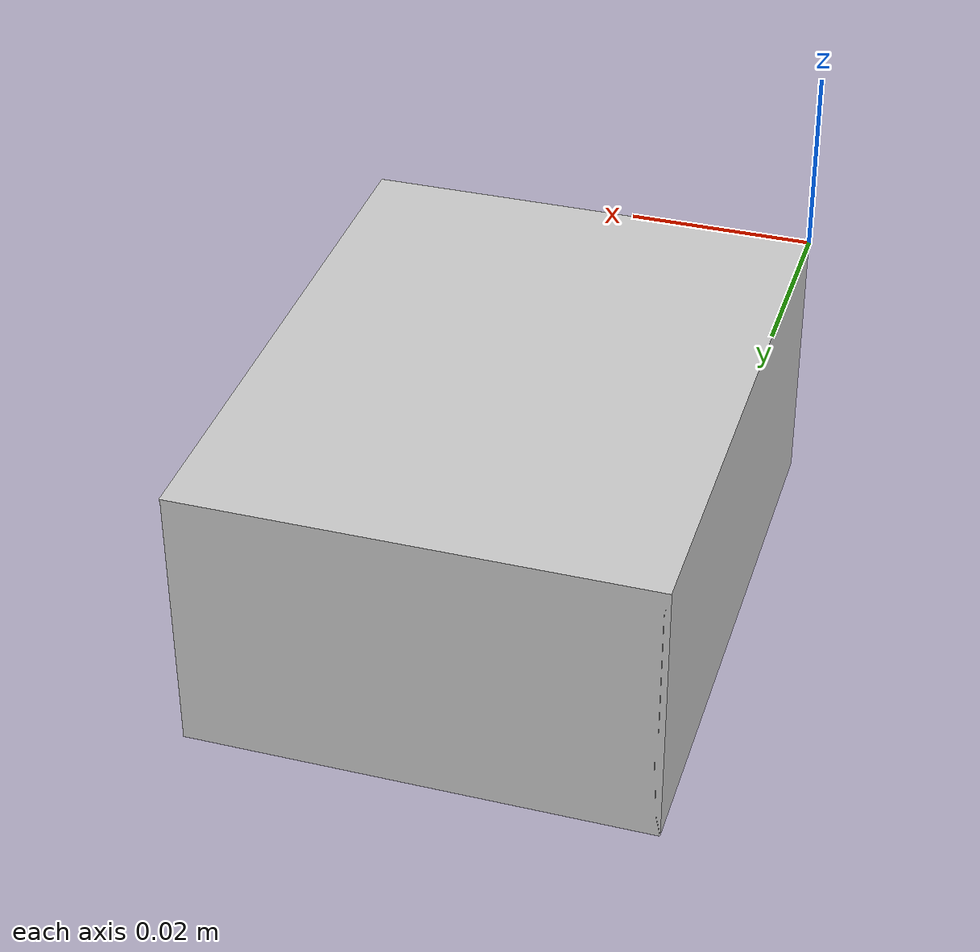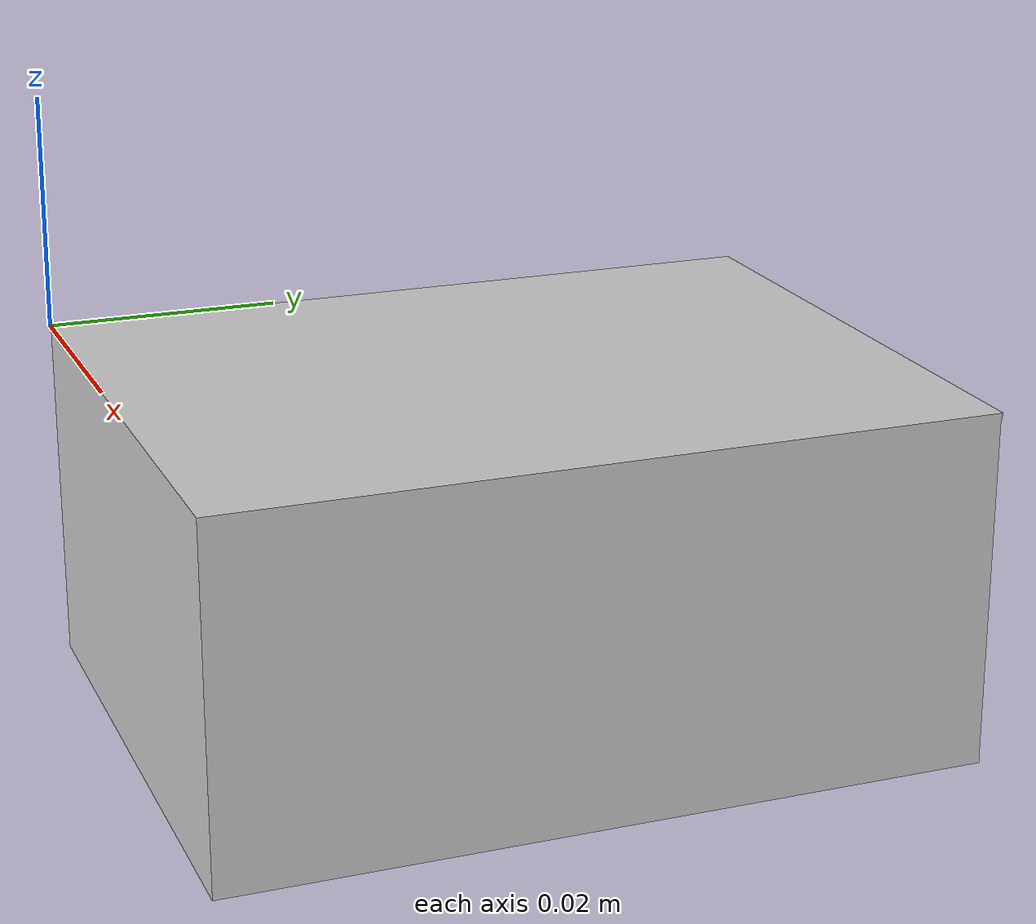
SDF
<?xml version="1.0" ?>
<sdf version="1.4">
  <model name="z_gba">
    <link name="z_gba_link">
      <inertial>
        <pose>-0.00 0.0 -0.005 0 0 0</pose>
        <mass>0.8</mass>
        <inertia>
          <ixx>0.001667</ixx>
	  <ixy>0.0</ixy>
	  <ixz>0.0</ixz>
	  <iyy>0.001667</iyy>
	  <iyz>0.0</iyz>
	  <izz>0.001667</izz>
	</inertia>
      </inertial>

      <visual name="z_gba_visual">
        <pose>0 0 0 -1.57 0 0 </pose>
        <material>
	  <lighting>1</lighting>
	  <ambient>0.2 0.2 0.2 1</ambient>
	  <diffuse>0.8 0.8 0.8 1</diffuse>
	  <specular>0.2 0.2 0.2 1</specular>
	  <emissive>0.85 0.85 0.85 1</emissive>
          <script>
            <uri>model://z_gba/materials/scripts</uri>
            <uri>model://z_gba/materials/textures</uri>
            <name>Z_gba/Image</name>
          </script>
        </material>
        <geometry>
          <mesh>
            <uri>model://z_gba/meshes/z_gba.dae</uri>
	    <scale>0.25 0.5 0.21</scale>
          </mesh>
        </geometry>
      </visual>

      <collision name="z_gba_collision">
        <pose>-0.0 0.0 -0.01 0.0 0.0 0.0</pose>
        <geometry>
	  <cylinder>
	    <radius>0.012</radius>
	    <length>0.04</length>
	  </cylinder>
        </geometry>
        <max_contacts>10</max_contacts>
        <surface>
          <contact>
	    <ode>
	      <max_vel>0.000</max_vel>
            </ode>
          </contact>
          <bounce/>
          <friction>
            <torsional>
              <ode/>
            </torsional>
            <ode>
              <mu>1</mu>
              <mu2>1</mu2>
            </ode>
          </friction>
        </surface>
      </collision>
      <self_collide>0</self_collide>
      <kinematic>0</kinematic>
    </link>
  </model>
</sdf>
